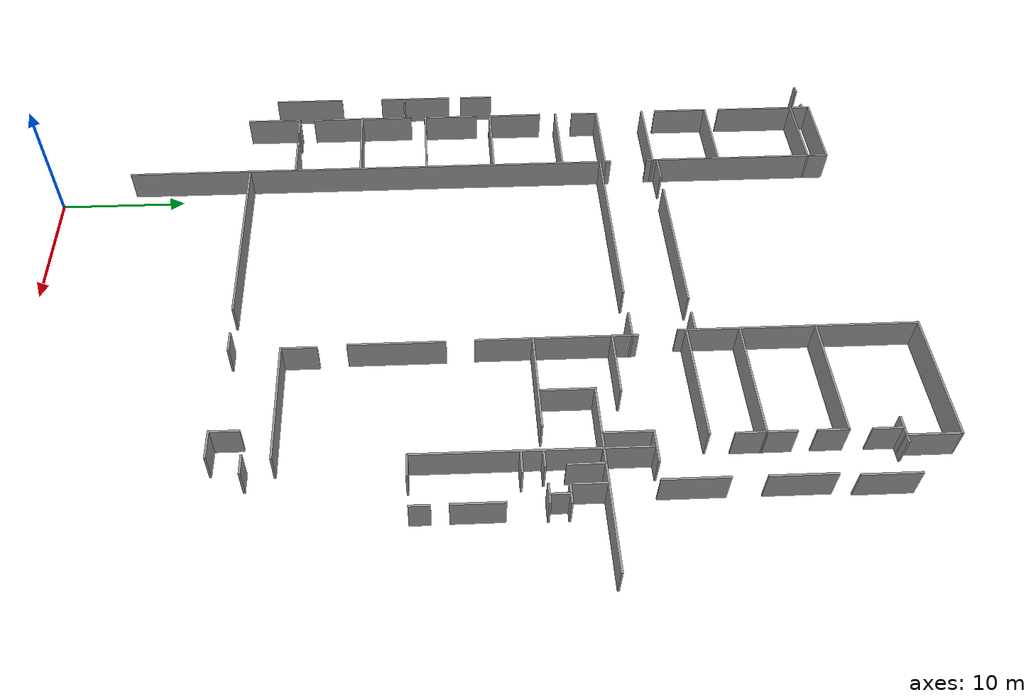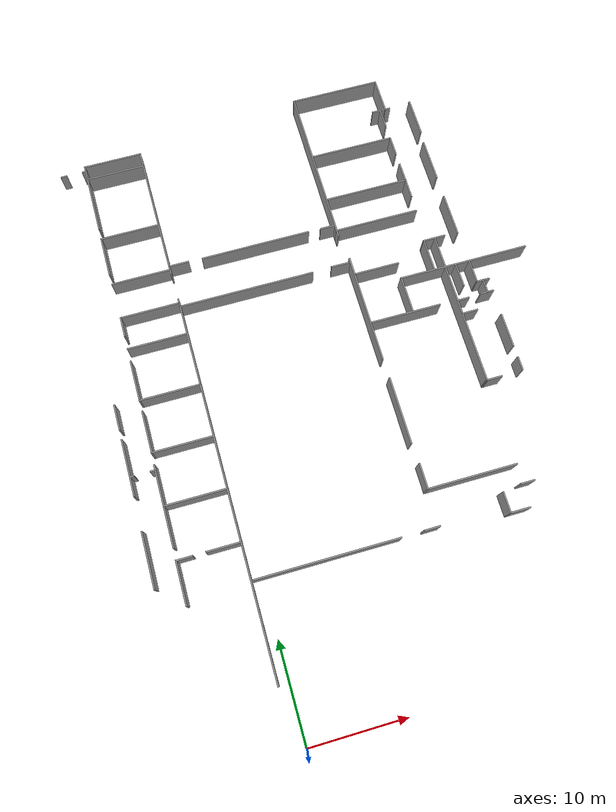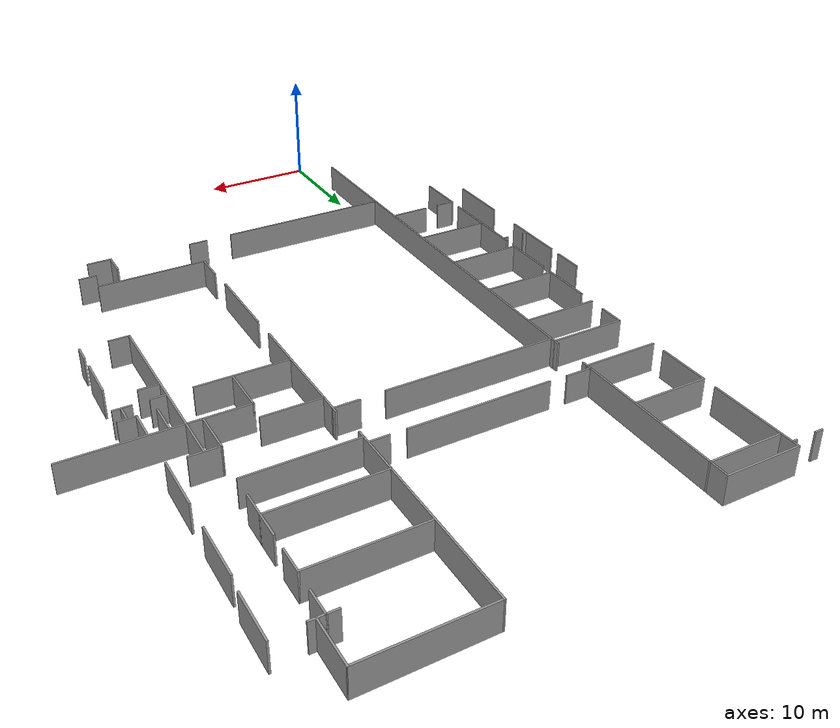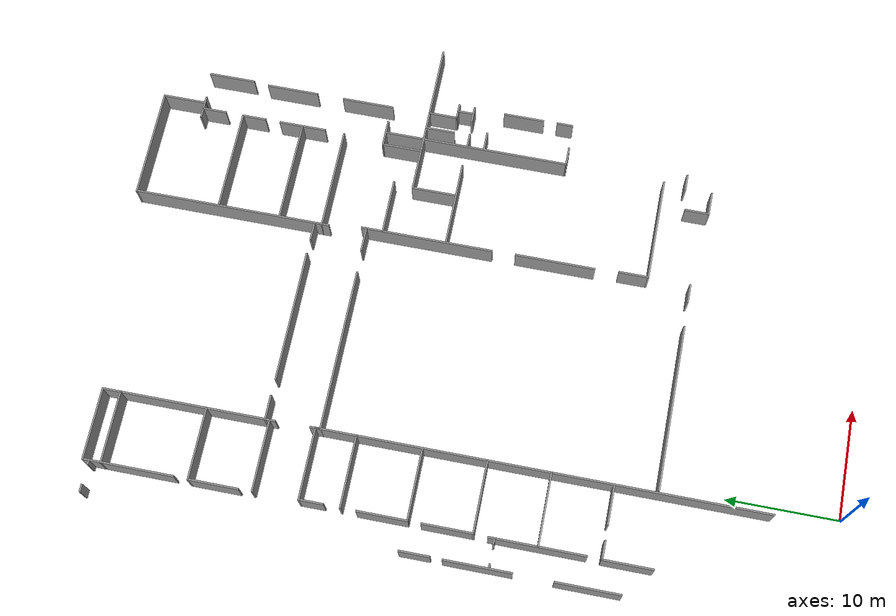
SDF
<sdf version="1.6">
 <model name="ensta_portes">
  <pose>1.28297 8.11006 0 0 -0 0</pose>
  <link name="Wall_1136">
   <collision name="Wall_1136_Collision">
    <geometry><box><size>15 0.15 2.5</size></box></geometry>
    <pose>0 0 1.25 0 -0 0</pose>
   </collision>
   <visual name="Wall_1136_Visual">
    <pose>0 0 1.25 0 -0 0</pose>
    <geometry><box><size>15 0.15 2.5</size></box></geometry>
    <material>
     <script><uri>file://media/materials/scripts/gazebo.material</uri><name>Gazebo/Grey</name></script>
     <ambient>1 1 1 1</ambient>
    </material>
    <meta><layer>0</layer></meta>
   </visual>
   <pose>5.31252 7.72951 0 0 -0 0</pose>
  </link>
  <link name="Wall_1138">
   <collision name="Wall_1138_Collision">
    <geometry><box><size>1.68456 0.15 2.5</size></box></geometry>
    <pose>0 0 1.25 0 -0 0</pose>
   </collision>
   <visual name="Wall_1138_Visual">
    <pose>0 0 1.25 0 -0 0</pose>
    <geometry><box><size>1.68456 0.15 2.5</size></box></geometry>
    <material>
     <script><uri>file://media/materials/scripts/gazebo.material</uri><name>Gazebo/Grey</name></script>
     <ambient>1 1 1 1</ambient>
    </material>
    <meta><layer>0</layer></meta>
   </visual>
   <pose>15.9348 7.77225 0 0 -0 0.003579</pose>
  </link>
  <link name="Wall_1144">
   <collision name="Wall_1144_Collision">
    <geometry><box><size>0.75 0.15 2.5</size></box></geometry>
    <pose>0 0 1.25 0 -0 0</pose>
   </collision>
   <visual name="Wall_1144_Visual">
    <pose>0 0 1.25 0 -0 0</pose>
    <geometry><box><size>0.75 0.15 2.5</size></box></geometry>
    <material>
     <script><uri>file://media/materials/scripts/gazebo.material</uri><name>Gazebo/Grey</name></script>
     <ambient>1 1 1 1</ambient>
    </material>
    <meta><layer>0</layer></meta>
   </visual>
   <pose>16.1952 40.9039 0 0 -0 -1.5708</pose>
  </link>
  <link name="Wall_171">
   <collision name="Wall_171_Collision">
    <geometry><box><size>1.5 0.15 2.5</size></box></geometry>
    <pose>0 0 1.25 0 -0 0</pose>
   </collision>
   <visual name="Wall_171_Visual">
    <pose>0 0 1.25 0 -0 0</pose>
    <geometry><box><size>1.5 0.15 2.5</size></box></geometry>
    <material>
     <script><uri>file://media/materials/scripts/gazebo.material</uri><name>Gazebo/Grey</name></script>
     <ambient>1 1 1 1</ambient>
    </material>
    <meta><layer>0</layer></meta>
   </visual>
   <pose>26.508 9.55259 0 0 -0 3.14159</pose>
  </link>
  <link name="Wall_189">
   <collision name="Wall_189_Collision">
    <geometry><box><size>9.5 0.15 2.5</size></box></geometry>
    <pose>0 0 1.25 0 -0 0</pose>
   </collision>
   <visual name="Wall_189_Visual">
    <pose>0 0 1.25 0 -0 0</pose>
    <geometry><box><size>9.5 0.15 2.5</size></box></geometry>
    <material>
     <script><uri>file://media/materials/scripts/gazebo.material</uri><name>Gazebo/Grey</name></script>
     <ambient>1 1 1 1</ambient>
    </material>
    <meta><layer>0</layer></meta>
   </visual>
   <pose>21.408 11.5526 0 0 -0 0</pose>
  </link>
  <link name="Wall_192">
   <collision name="Wall_192_Collision">
    <geometry><box><size>2.25 0.15 2.5</size></box></geometry>
    <pose>0 0 1.25 0 -0 0</pose>
   </collision>
   <visual name="Wall_192_Visual">
    <pose>0 0 1.25 0 -0 0</pose>
    <geometry><box><size>2.25 0.15 2.5</size></box></geometry>
    <material>
     <script><uri>file://media/materials/scripts/gazebo.material</uri><name>Gazebo/Grey</name></script>
     <ambient>1 1 1 1</ambient>
    </material>
    <meta><layer>0</layer></meta>
   </visual>
   <pose>23.8002 8.18236 0 0 -0 -1.5708</pose>
  </link>
  <link name="Wall_193">
   <collision name="Wall_193_Collision">
    <geometry><box><size>2.17473 0.15 2.5</size></box></geometry>
    <pose>0 0 1.25 0 -0 0</pose>
   </collision>
   <visual name="Wall_193_Visual">
    <pose>0 0 1.25 0 -0 0</pose>
    <geometry><box><size>2.17473 0.15 2.5</size></box></geometry>
    <material>
     <script><uri>file://media/materials/scripts/gazebo.material</uri><name>Gazebo/Grey</name></script>
     <ambient>1 1 1 1</ambient>
    </material>
    <meta><layer>0</layer></meta>
   </visual>
   <pose>24.8126 7.13086 0 0 -0 -0.001481</pose>
  </link>
  <link name="Wall_208">
   <collision name="Wall_208_Collision">
    <geometry><box><size>2.75 0.15 2.5</size></box></geometry>
    <pose>0 0 1.25 0 -0 0</pose>
   </collision>
   <visual name="Wall_208_Visual">
    <pose>0 0 1.25 0 -0 0</pose>
    <geometry><box><size>2.75 0.15 2.5</size></box></geometry>
    <material>
     <script><uri>file://media/materials/scripts/gazebo.material</uri><name>Gazebo/Grey</name></script>
     <ambient>1 1 1 1</ambient>
    </material>
    <meta><layer>0</layer></meta>
   </visual>
   <pose>16.733 12.8526 0 0 -0 1.5708</pose>
  </link>
  <link name="Wall_210">
   <collision name="Wall_210_Collision">
    <geometry><box><size>7.25 0.15 2.5</size></box></geometry>
    <pose>0 0 1.25 0 -0 0</pose>
   </collision>
   <visual name="Wall_210_Visual">
    <pose>0 0 1.25 0 -0 0</pose>
    <geometry><box><size>7.25 0.15 2.5</size></box></geometry>
    <material>
     <script><uri>file://media/materials/scripts/gazebo.material</uri><name>Gazebo/Grey</name></script>
     <ambient>1 1 1 1</ambient>
    </material>
    <meta><layer>0</layer></meta>
   </visual>
   <pose>16.5965 19.9449 0 0 -0 1.5708</pose>
  </link>
  <link name="Wall_212">
   <collision name="Wall_212_Collision">
    <geometry><box><size>12 0.15 2.5</size></box></geometry>
    <pose>0 0 1.25 0 -0 0</pose>
   </collision>
   <visual name="Wall_212_Visual">
    <pose>0 0 1.25 0 -0 0</pose>
    <geometry><box><size>12 0.15 2.5</size></box></geometry>
    <material>
     <script><uri>file://media/materials/scripts/gazebo.material</uri><name>Gazebo/Grey</name></script>
     <ambient>1 1 1 1</ambient>
    </material>
    <meta><layer>0</layer></meta>
   </visual>
   <pose>16.5473 31.6403 0 0 -0 1.5708</pose>
  </link>
  <link name="Wall_214">
   <collision name="Wall_214_Collision">
    <geometry><box><size>7.75 0.15 2.5</size></box></geometry>
    <pose>0 0 1.25 0 -0 0</pose>
   </collision>
   <visual name="Wall_214_Visual">
    <pose>0 0 1.25 0 -0 0</pose>
    <geometry><box><size>7.75 0.15 2.5</size></box></geometry>
    <material>
     <script><uri>file://media/materials/scripts/gazebo.material</uri><name>Gazebo/Grey</name></script>
     <ambient>1 1 1 1</ambient>
    </material>
    <meta><layer>0</layer></meta>
   </visual>
   <pose>20.4047 29.8873 0 0 -0 0</pose>
  </link>
  <link name="Wall_216">
   <collision name="Wall_216_Collision">
    <geometry><box><size>4 0.15 2.5</size></box></geometry>
    <pose>0 0 1.25 0 -0 0</pose>
   </collision>
   <visual name="Wall_216_Visual">
    <pose>0 0 1.25 0 -0 0</pose>
    <geometry><box><size>4 0.15 2.5</size></box></geometry>
    <material>
     <script><uri>file://media/materials/scripts/gazebo.material</uri><name>Gazebo/Grey</name></script>
     <ambient>1 1 1 1</ambient>
    </material>
    <meta><layer>0</layer></meta>
   </visual>
   <pose>21.2308 31.9732 0 0 -0 1.5708</pose>
  </link>
  <link name="Wall_217">
   <collision name="Wall_217_Collision">
    <geometry><box><size>14.25 0.15 2.5</size></box></geometry>
    <pose>0 0 1.25 0 -0 0</pose>
   </collision>
   <visual name="Wall_217_Visual">
    <pose>0 0 1.25 0 -0 0</pose>
    <geometry><box><size>14.25 0.15 2.5</size></box></geometry>
    <material>
     <script><uri>file://media/materials/scripts/gazebo.material</uri><name>Gazebo/Grey</name></script>
     <ambient>1 1 1 1</ambient>
    </material>
    <meta><layer>0</layer></meta>
   </visual>
   <pose>28.2808 33.8982 0 0 -0 0</pose>
  </link>
  <link name="Wall_219">
   <collision name="Wall_219_Collision">
    <geometry><box><size>5 0.15 2.5</size></box></geometry>
    <pose>0 0 1.25 0 -0 0</pose>
   </collision>
   <visual name="Wall_219_Visual">
    <pose>0 0 1.25 0 -0 0</pose>
    <geometry><box><size>5 0.15 2.5</size></box></geometry>
    <material>
     <script><uri>file://media/materials/scripts/gazebo.material</uri><name>Gazebo/Grey</name></script>
     <ambient>1 1 1 1</ambient>
    </material>
    <meta><layer>0</layer></meta>
   </visual>
   <pose>19.0211 35.68 0 0 -0 0</pose>
  </link>
  <link name="Wall_221">
   <collision name="Wall_221_Collision">
    <geometry><box><size>13.391 0.15 2.5</size></box></geometry>
    <pose>0 0 1.25 0 -0 0</pose>
   </collision>
   <visual name="Wall_221_Visual">
    <pose>0 0 1.25 0 -0 0</pose>
    <geometry><box><size>13.391 0.15 2.5</size></box></geometry>
    <material>
     <script><uri>file://media/materials/scripts/gazebo.material</uri><name>Gazebo/Grey</name></script>
     <ambient>1 1 1 1</ambient>
    </material>
    <meta><layer>0</layer></meta>
   </visual>
   <pose>26.1979 27.24 0 0 -0 -1.57175</pose>
  </link>
  <link name="Wall_222">
   <collision name="Wall_222_Collision">
    <geometry><box><size>1.75 0.15 2.5</size></box></geometry>
    <pose>0 0 1.25 0 -0 0</pose>
   </collision>
   <visual name="Wall_222_Visual">
    <pose>0 0 1.25 0 -0 0</pose>
    <geometry><box><size>1.75 0.15 2.5</size></box></geometry>
    <material>
     <script><uri>file://media/materials/scripts/gazebo.material</uri><name>Gazebo/Grey</name></script>
     <ambient>1 1 1 1</ambient>
    </material>
    <meta><layer>0</layer></meta>
   </visual>
   <pose>26.9916 20.6195 0 0 -0 0</pose>
  </link>
  <link name="Wall_232">
   <collision name="Wall_232_Collision">
    <geometry><box><size>1.75 0.15 2.5</size></box></geometry>
    <pose>0 0 1.25 0 -0 0</pose>
   </collision>
   <visual name="Wall_232_Visual">
    <pose>0 0 1.25 0 -0 0</pose>
    <geometry><box><size>1.75 0.15 2.5</size></box></geometry>
    <material>
     <script><uri>file://media/materials/scripts/gazebo.material</uri><name>Gazebo/Grey</name></script>
     <ambient>1 1 1 1</ambient>
    </material>
    <meta><layer>0</layer></meta>
   </visual>
   <pose>27.0409 28.2724 0 0 -0 0</pose>
  </link>
  <link name="Wall_238">
   <collision name="Wall_238_Collision">
    <geometry><box><size>3.75 0.15 2.5</size></box></geometry>
    <pose>0 0 1.25 0 -0 0</pose>
   </collision>
   <visual name="Wall_238_Visual">
    <pose>0 0 1.25 0 -0 0</pose>
    <geometry><box><size>3.75 0.15 2.5</size></box></geometry>
    <material>
     <script><uri>file://media/materials/scripts/gazebo.material</uri><name>Gazebo/Grey</name></script>
     <ambient>1 1 1 1</ambient>
    </material>
    <meta><layer>0</layer></meta>
   </visual>
   <pose>30.1049 25.2304 0 0 -0 -1.5708</pose>
  </link>
  <link name="Wall_240">
   <collision name="Wall_240_Collision">
    <geometry><box><size>1.5 0.15 2.5</size></box></geometry>
    <pose>0 0 1.25 0 -0 0</pose>
   </collision>
   <visual name="Wall_240_Visual">
    <pose>0 0 1.25 0 -0 0</pose>
    <geometry><box><size>1.5 0.15 2.5</size></box></geometry>
    <material>
     <script><uri>file://media/materials/scripts/gazebo.material</uri><name>Gazebo/Grey</name></script>
     <ambient>1 1 1 1</ambient>
    </material>
    <meta><layer>0</layer></meta>
   </visual>
   <pose>30.1187 21.4076 0 0 -0 -1.5708</pose>
  </link>
  <link name="Wall_244">
   <collision name="Wall_244_Collision">
    <geometry><box><size>1.25 0.15 2.5</size></box></geometry>
    <pose>0 0 1.25 0 -0 0</pose>
   </collision>
   <visual name="Wall_244_Visual">
    <pose>0 0 1.25 0 -0 0</pose>
    <geometry><box><size>1.25 0.15 2.5</size></box></geometry>
    <material>
     <script><uri>file://media/materials/scripts/gazebo.material</uri><name>Gazebo/Grey</name></script>
     <ambient>1 1 1 1</ambient>
    </material>
    <meta><layer>0</layer></meta>
   </visual>
   <pose>26.8806 29.8259 0 0 -0 0</pose>
  </link>
  <link name="Wall_246">
   <collision name="Wall_246_Collision">
    <geometry><box><size>2.70349 0.15 2.5</size></box></geometry>
    <pose>0 0 1.25 0 -0 0</pose>
   </collision>
   <visual name="Wall_246_Visual">
    <pose>0 0 1.25 0 -0 0</pose>
    <geometry><box><size>2.70349 0.15 2.5</size></box></geometry>
    <material>
     <script><uri>file://media/materials/scripts/gazebo.material</uri><name>Gazebo/Grey</name></script>
     <ambient>1 1 1 1</ambient>
    </material>
    <meta><layer>0</layer></meta>
   </visual>
   <pose>27.3831 32.5936 0 0 -0 -1.56644</pose>
  </link>
  <link name="Wall_248">
   <collision name="Wall_248_Collision">
    <geometry><box><size>2.68046 0.15 2.5</size></box></geometry>
    <pose>0 0 1.25 0 -0 0</pose>
   </collision>
   <visual name="Wall_248_Visual">
    <pose>0 0 1.25 0 -0 0</pose>
    <geometry><box><size>2.68046 0.15 2.5</size></box></geometry>
    <material>
     <script><uri>file://media/materials/scripts/gazebo.material</uri><name>Gazebo/Grey</name></script>
     <ambient>1 1 1 1</ambient>
    </material>
    <meta><layer>0</layer></meta>
   </visual>
   <pose>28.9077 32.6052 0 0 -0 -1.57165</pose>
  </link>
  <link name="Wall_249">
   <collision name="Wall_249_Collision">
    <geometry><box><size>1.5 0.15 2.5</size></box></geometry>
    <pose>0 0 1.25 0 -0 0</pose>
   </collision>
   <visual name="Wall_249_Visual">
    <pose>0 0 1.25 0 -0 0</pose>
    <geometry><box><size>1.5 0.15 2.5</size></box></geometry>
    <material>
     <script><uri>file://media/materials/scripts/gazebo.material</uri><name>Gazebo/Grey</name></script>
     <ambient>1 1 1 1</ambient>
    </material>
    <meta><layer>0</layer></meta>
   </visual>
   <pose>29.5816 31.3399 0 0 -0 0</pose>
  </link>
  <link name="Wall_254">
   <collision name="Wall_254_Collision">
    <geometry><box><size>1.5 0.15 2.5</size></box></geometry>
    <pose>0 0 1.25 0 -0 0</pose>
   </collision>
   <visual name="Wall_254_Visual">
    <pose>0 0 1.25 0 -0 0</pose>
    <geometry><box><size>1.5 0.15 2.5</size></box></geometry>
    <material>
     <script><uri>file://media/materials/scripts/gazebo.material</uri><name>Gazebo/Grey</name></script>
     <ambient>1 1 1 1</ambient>
    </material>
    <meta><layer>0</layer></meta>
   </visual>
   <pose>29.5333 29.9094 0 0 -0 0</pose>
  </link>
  <link name="Wall_256">
   <collision name="Wall_256_Collision">
    <geometry><box><size>1.5 0.15 2.5</size></box></geometry>
    <pose>0 0 1.25 0 -0 0</pose>
   </collision>
   <visual name="Wall_256_Visual">
    <pose>0 0 1.25 0 -0 0</pose>
    <geometry><box><size>1.5 0.15 2.5</size></box></geometry>
    <material>
     <script><uri>file://media/materials/scripts/gazebo.material</uri><name>Gazebo/Grey</name></script>
     <ambient>1 1 1 1</ambient>
    </material>
    <meta><layer>0</layer></meta>
   </visual>
   <pose>29.5993 30.5955 0 0 -0 -1.5708</pose>
  </link>
  <link name="Wall_266">
   <collision name="Wall_266_Collision">
    <geometry><box><size>4.25 0.15 2.5</size></box></geometry>
    <pose>0 0 1.25 0 -0 0</pose>
   </collision>
   <visual name="Wall_266_Visual">
    <pose>0 0 1.25 0 -0 0</pose>
    <geometry><box><size>4.25 0.15 2.5</size></box></geometry>
    <material>
     <script><uri>file://media/materials/scripts/gazebo.material</uri><name>Gazebo/Grey</name></script>
     <ambient>1 1 1 1</ambient>
    </material>
    <meta><layer>0</layer></meta>
   </visual>
   <pose>28.9808 52.6982 0 0 -0 -1.5708</pose>
  </link>
  <link name="Wall_270">
   <collision name="Wall_270_Collision">
    <geometry><box><size>4.75 0.15 2.5</size></box></geometry>
    <pose>0 0 1.25 0 -0 0</pose>
   </collision>
   <visual name="Wall_270_Visual">
    <pose>0 0 1.25 0 -0 0</pose>
    <geometry><box><size>4.75 0.15 2.5</size></box></geometry>
    <material>
     <script><uri>file://media/materials/scripts/gazebo.material</uri><name>Gazebo/Grey</name></script>
     <ambient>1 1 1 1</ambient>
    </material>
    <meta><layer>0</layer></meta>
   </visual>
   <pose>28.8317 46.8599 0 0 -0 -1.5708</pose>
  </link>
  <link name="Wall_274">
   <collision name="Wall_274_Collision">
    <geometry><box><size>4.75 0.15 2.5</size></box></geometry>
    <pose>0 0 1.25 0 -0 0</pose>
   </collision>
   <visual name="Wall_274_Visual">
    <pose>0 0 1.25 0 -0 0</pose>
    <geometry><box><size>4.75 0.15 2.5</size></box></geometry>
    <material>
     <script><uri>file://media/materials/scripts/gazebo.material</uri><name>Gazebo/Grey</name></script>
     <ambient>1 1 1 1</ambient>
    </material>
    <meta><layer>0</layer></meta>
   </visual>
   <pose>28.8144 39.7 0 0 -0 -1.5708</pose>
  </link>
  <link name="Wall_277">
   <collision name="Wall_277_Collision">
    <geometry><box><size>2.5 0.15 2.5</size></box></geometry>
    <pose>0 0 1.25 0 -0 0</pose>
   </collision>
   <visual name="Wall_277_Visual">
    <pose>0 0 1.25 0 -0 0</pose>
    <geometry><box><size>2.5 0.15 2.5</size></box></geometry>
    <material>
     <script><uri>file://media/materials/scripts/gazebo.material</uri><name>Gazebo/Grey</name></script>
     <ambient>1 1 1 1</ambient>
    </material>
    <meta><layer>0</layer></meta>
   </visual>
   <pose>26.1427 37.4716 0 0 -0 3.14159</pose>
  </link>
  <link name="Wall_278">
   <collision name="Wall_278_Collision">
    <geometry><box><size>3.71066 0.15 2.5</size></box></geometry>
    <pose>0 0 1.25 0 -0 0</pose>
   </collision>
   <visual name="Wall_278_Visual">
    <pose>0 0 1.25 0 -0 0</pose>
    <geometry><box><size>3.71066 0.15 2.5</size></box></geometry>
    <material>
     <script><uri>file://media/materials/scripts/gazebo.material</uri><name>Gazebo/Grey</name></script>
     <ambient>1 1 1 1</ambient>
    </material>
    <meta><layer>0</layer></meta>
   </visual>
   <pose>24.9707 35.6913 0 0 -0 -1.5691</pose>
  </link>
  <link name="Wall_280">
   <collision name="Wall_280_Collision">
    <geometry><box><size>3.75 0.15 2.5</size></box></geometry>
    <pose>0 0 1.25 0 -0 0</pose>
   </collision>
   <visual name="Wall_280_Visual">
    <pose>0 0 1.25 0 -0 0</pose>
    <geometry><box><size>3.75 0.15 2.5</size></box></geometry>
    <material>
     <script><uri>file://media/materials/scripts/gazebo.material</uri><name>Gazebo/Grey</name></script>
     <ambient>1 1 1 1</ambient>
    </material>
    <meta><layer>0</layer></meta>
   </visual>
   <pose>26.2042 35.6604 0 0 -0 -1.5708</pose>
  </link>
  <link name="Wall_282">
   <collision name="Wall_282_Collision">
    <geometry><box><size>1.25 0.15 2.5</size></box></geometry>
    <pose>0 0 1.25 0 -0 0</pose>
   </collision>
   <visual name="Wall_282_Visual">
    <pose>0 0 1.25 0 -0 0</pose>
    <geometry><box><size>1.25 0.15 2.5</size></box></geometry>
    <material>
     <script><uri>file://media/materials/scripts/gazebo.material</uri><name>Gazebo/Grey</name></script>
     <ambient>1 1 1 1</ambient>
    </material>
    <meta><layer>0</layer></meta>
   </visual>
   <pose>25.9401 54.5739 0 0 -0 3.14159</pose>
  </link>
  <link name="Wall_284">
   <collision name="Wall_284_Collision">
    <geometry><box><size>4 0.15 2.5</size></box></geometry>
    <pose>0 0 1.25 0 -0 0</pose>
   </collision>
   <visual name="Wall_284_Visual">
    <pose>0 0 1.25 0 -0 0</pose>
    <geometry><box><size>4 0.15 2.5</size></box></geometry>
    <material>
     <script><uri>file://media/materials/scripts/gazebo.material</uri><name>Gazebo/Grey</name></script>
     <ambient>1 1 1 1</ambient>
    </material>
    <meta><layer>0</layer></meta>
   </visual>
   <pose>25.9875 56.4989 0 0 -0 1.5708</pose>
  </link>
  <link name="Wall_285">
   <collision name="Wall_285_Collision">
    <geometry><box><size>9.9458 0.15 2.5</size></box></geometry>
    <pose>0 0 1.25 0 -0 0</pose>
   </collision>
   <visual name="Wall_285_Visual">
    <pose>0 0 1.25 0 -0 0</pose>
    <geometry><box><size>9.9458 0.15 2.5</size></box></geometry>
    <material>
     <script><uri>file://media/materials/scripts/gazebo.material</uri><name>Gazebo/Grey</name></script>
     <ambient>1 1 1 1</ambient>
    </material>
    <meta><layer>0</layer></meta>
   </visual>
   <pose>21.0896 58.4249 0 0 -0 3.14139</pose>
  </link>
  <link name="Wall_287">
   <collision name="Wall_287_Collision">
    <geometry><box><size>17.372 0.15 2.5</size></box></geometry>
    <pose>0 0 1.25 0 -0 0</pose>
   </collision>
   <visual name="Wall_287_Visual">
    <pose>0 0 1.25 0 -0 0</pose>
    <geometry><box><size>17.372 0.15 2.5</size></box></geometry>
    <material>
     <script><uri>file://media/materials/scripts/gazebo.material</uri><name>Gazebo/Grey</name></script>
     <ambient>1 1 1 1</ambient>
    </material>
    <meta><layer>0</layer></meta>
   </visual>
   <pose>16.1935 49.8149 0 0 -0 -1.57059</pose>
  </link>
  <link name="Wall_288">
   <collision name="Wall_288_Collision">
    <geometry><box><size>9.25 0.15 2.5</size></box></geometry>
    <pose>0 0 1.25 0 -0 0</pose>
   </collision>
   <visual name="Wall_288_Visual">
    <pose>0 0 1.25 0 -0 0</pose>
    <geometry><box><size>9.25 0.15 2.5</size></box></geometry>
    <material>
     <script><uri>file://media/materials/scripts/gazebo.material</uri><name>Gazebo/Grey</name></script>
     <ambient>1 1 1 1</ambient>
    </material>
    <meta><layer>0</layer></meta>
   </visual>
   <pose>20.7452 41.2039 0 0 -0 0</pose>
  </link>
  <link name="Wall_290">
   <collision name="Wall_290_Collision">
    <geometry><box><size>9.25 0.15 2.5</size></box></geometry>
    <pose>0 0 1.25 0 -0 0</pose>
   </collision>
   <visual name="Wall_290_Visual">
    <pose>0 0 1.25 0 -0 0</pose>
    <geometry><box><size>9.25 0.15 2.5</size></box></geometry>
    <material>
     <script><uri>file://media/materials/scripts/gazebo.material</uri><name>Gazebo/Grey</name></script>
     <ambient>1 1 1 1</ambient>
    </material>
    <meta><layer>0</layer></meta>
   </visual>
   <pose>20.8144 45.1383 0 0 -0 0</pose>
  </link>
  <link name="Wall_292">
   <collision name="Wall_292_Collision">
    <geometry><box><size>2.25 0.15 2.5</size></box></geometry>
    <pose>0 0 1.25 0 -0 0</pose>
   </collision>
   <visual name="Wall_292_Visual">
    <pose>0 0 1.25 0 -0 0</pose>
    <geometry><box><size>2.25 0.15 2.5</size></box></geometry>
    <material>
     <script><uri>file://media/materials/scripts/gazebo.material</uri><name>Gazebo/Grey</name></script>
     <ambient>1 1 1 1</ambient>
    </material>
    <meta><layer>0</layer></meta>
   </visual>
   <pose>25.3644 44.0883 0 0 -0 -1.5708</pose>
  </link>
  <link name="Wall_294">
   <collision name="Wall_294_Collision">
    <geometry><box><size>9.25 0.15 2.5</size></box></geometry>
    <pose>0 0 1.25 0 -0 0</pose>
   </collision>
   <visual name="Wall_294_Visual">
    <pose>0 0 1.25 0 -0 0</pose>
    <geometry><box><size>9.25 0.15 2.5</size></box></geometry>
    <material>
     <script><uri>file://media/materials/scripts/gazebo.material</uri><name>Gazebo/Grey</name></script>
     <ambient>1 1 1 1</ambient>
    </material>
    <meta><layer>0</layer></meta>
   </visual>
   <pose>20.8163 50.7822 0 0 -0 0</pose>
  </link>
  <link name="Wall_295">
   <collision name="Wall_295_Collision">
    <geometry><box><size>2.25 0.15 2.5</size></box></geometry>
    <pose>0 0 1.25 0 -0 0</pose>
   </collision>
   <visual name="Wall_295_Visual">
    <pose>0 0 1.25 0 -0 0</pose>
    <geometry><box><size>2.25 0.15 2.5</size></box></geometry>
    <material>
     <script><uri>file://media/materials/scripts/gazebo.material</uri><name>Gazebo/Grey</name></script>
     <ambient>1 1 1 1</ambient>
    </material>
    <meta><layer>0</layer></meta>
   </visual>
   <pose>25.3663 49.7322 0 0 -0 -1.5708</pose>
  </link>
  <link name="Wall_297">
   <collision name="Wall_297_Collision">
    <geometry><box><size>2.22866 0.15 2.5</size></box></geometry>
    <pose>0 0 1.25 0 -0 0</pose>
   </collision>
   <visual name="Wall_297_Visual">
    <pose>0 0 1.25 0 -0 0</pose>
    <geometry><box><size>2.22866 0.15 2.5</size></box></geometry>
    <material>
     <script><uri>file://media/materials/scripts/gazebo.material</uri><name>Gazebo/Grey</name></script>
     <ambient>1 1 1 1</ambient>
    </material>
    <meta><layer>0</layer></meta>
   </visual>
   <pose>25.3632 46.1776 0 0 -0 -1.56961</pose>
  </link>
  <link name="Wall_299">
   <collision name="Wall_299_Collision">
    <geometry><box><size>1 0.15 2.5</size></box></geometry>
    <pose>0 0 1.25 0 -0 0</pose>
   </collision>
   <visual name="Wall_299_Visual">
    <pose>0 0 1.25 0 -0 0</pose>
    <geometry><box><size>1 0.15 2.5</size></box></geometry>
    <material>
     <script><uri>file://media/materials/scripts/gazebo.material</uri><name>Gazebo/Grey</name></script>
     <ambient>1 1 1 1</ambient>
    </material>
    <meta><layer>0</layer></meta>
   </visual>
   <pose>24.9651 54.5739 0 0 -0 3.14159</pose>
  </link>
  <link name="Wall_301">
   <collision name="Wall_301_Collision">
    <geometry><box><size>2.25 0.15 2.5</size></box></geometry>
    <pose>0 0 1.25 0 -0 0</pose>
   </collision>
   <visual name="Wall_301_Visual">
    <pose>0 0 1.25 0 -0 0</pose>
    <geometry><box><size>2.25 0.15 2.5</size></box></geometry>
    <material>
     <script><uri>file://media/materials/scripts/gazebo.material</uri><name>Gazebo/Grey</name></script>
     <ambient>1 1 1 1</ambient>
    </material>
    <meta><layer>0</layer></meta>
   </visual>
   <pose>25.3901 53.5239 0 0 -0 -1.5708</pose>
  </link>
  <link name="Wall_306">
   <collision name="Wall_306_Collision">
    <geometry><box><size>1.75 0.15 2.5</size></box></geometry>
    <pose>0 0 1.25 0 -0 0</pose>
   </collision>
   <visual name="Wall_306_Visual">
    <pose>0 0 1.25 0 -0 0</pose>
    <geometry><box><size>1.75 0.15 2.5</size></box></geometry>
    <material>
     <script><uri>file://media/materials/scripts/gazebo.material</uri><name>Gazebo/Grey</name></script>
     <ambient>1 1 1 1</ambient>
    </material>
    <meta><layer>0</layer></meta>
   </visual>
   <pose>15.381 41.8731 0 0 -0 3.14159</pose>
  </link>
  <link name="Wall_308">
   <collision name="Wall_308_Collision">
    <geometry><box><size>12 0.15 2.5</size></box></geometry>
    <pose>0 0 1.25 0 -0 0</pose>
   </collision>
   <visual name="Wall_308_Visual">
    <pose>0 0 1.25 0 -0 0</pose>
    <geometry><box><size>12 0.15 2.5</size></box></geometry>
    <material>
     <script><uri>file://media/materials/scripts/gazebo.material</uri><name>Gazebo/Grey</name></script>
     <ambient>1 1 1 1</ambient>
    </material>
    <meta><layer>0</layer></meta>
   </visual>
   <pose>7.20728 41.883 0 0 -0 3.14159</pose>
  </link>
  <link name="Wall_310">
   <collision name="Wall_310_Collision">
    <geometry><box><size>2.25 0.15 2.5</size></box></geometry>
    <pose>0 0 1.25 0 -0 0</pose>
   </collision>
   <visual name="Wall_310_Visual">
    <pose>0 0 1.25 0 -0 0</pose>
    <geometry><box><size>2.25 0.15 2.5</size></box></geometry>
    <material>
     <script><uri>file://media/materials/scripts/gazebo.material</uri><name>Gazebo/Grey</name></script>
     <ambient>1 1 1 1</ambient>
    </material>
    <meta><layer>0</layer></meta>
   </visual>
   <pose>-1.36536 41.9288 0 0 -0 3.14159</pose>
  </link>
  <link name="Wall_312">
   <collision name="Wall_312_Collision">
    <geometry><box><size>1 0.15 2.5</size></box></geometry>
    <pose>0 0 1.25 0 -0 0</pose>
   </collision>
   <visual name="Wall_312_Visual">
    <pose>0 0 1.25 0 -0 0</pose>
    <geometry><box><size>1 0.15 2.5</size></box></geometry>
    <material>
     <script><uri>file://media/materials/scripts/gazebo.material</uri><name>Gazebo/Grey</name></script>
     <ambient>1 1 1 1</ambient>
    </material>
    <meta><layer>0</layer></meta>
   </visual>
   <pose>-2.41535 41.5038 0 0 -0 -1.5708</pose>
  </link>
  <link name="Wall_316">
   <collision name="Wall_316_Collision">
    <geometry><box><size>1 0.15 2.5</size></box></geometry>
    <pose>0 0 1.25 0 -0 0</pose>
   </collision>
   <visual name="Wall_316_Visual">
    <pose>0 0 1.25 0 -0 0</pose>
    <geometry><box><size>1 0.15 2.5</size></box></geometry>
    <material>
     <script><uri>file://media/materials/scripts/gazebo.material</uri><name>Gazebo/Grey</name></script>
     <ambient>1 1 1 1</ambient>
    </material>
    <meta><layer>0</layer></meta>
   </visual>
   <pose>-2.35107 37.5063 0 0 -0 -1.5708</pose>
  </link>
  <link name="Wall_317">
   <collision name="Wall_317_Collision">
    <geometry><box><size>14.75 0.15 2.5</size></box></geometry>
    <pose>0 0 1.25 0 -0 0</pose>
   </collision>
   <visual name="Wall_317_Visual">
    <pose>0 0 1.25 0 -0 0</pose>
    <geometry><box><size>14.75 0.15 2.5</size></box></geometry>
    <material>
     <script><uri>file://media/materials/scripts/gazebo.material</uri><name>Gazebo/Grey</name></script>
     <ambient>1 1 1 1</ambient>
    </material>
    <meta><layer>0</layer></meta>
   </visual>
   <pose>4.94893 37.0813 0 0 -0 0</pose>
  </link>
  <link name="Wall_319">
   <collision name="Wall_319_Collision">
    <geometry><box><size>2.25 0.15 2.5</size></box></geometry>
    <pose>0 0 1.25 0 -0 0</pose>
   </collision>
   <visual name="Wall_319_Visual">
    <pose>0 0 1.25 0 -0 0</pose>
    <geometry><box><size>2.25 0.15 2.5</size></box></geometry>
    <material>
     <script><uri>file://media/materials/scripts/gazebo.material</uri><name>Gazebo/Grey</name></script>
     <ambient>1 1 1 1</ambient>
    </material>
    <meta><layer>0</layer></meta>
   </visual>
   <pose>15.4995 37.1681 0 0 -0 0</pose>
  </link>
  <link name="Wall_321">
   <collision name="Wall_321_Collision">
    <geometry><box><size>13 0.15 2.5</size></box></geometry>
    <pose>0 0 1.25 0 -0 0</pose>
   </collision>
   <visual name="Wall_321_Visual">
    <pose>0 0 1.25 0 -0 0</pose>
    <geometry><box><size>13 0.15 2.5</size></box></geometry>
    <material>
     <script><uri>file://media/materials/scripts/gazebo.material</uri><name>Gazebo/Grey</name></script>
     <ambient>1 1 1 1</ambient>
    </material>
    <meta><layer>0</layer></meta>
   </visual>
   <pose>-2.41535 48.3538 0 0 -0 1.5708</pose>
  </link>
  <link name="Wall_322">
   <collision name="Wall_322_Collision">
    <geometry><box><size>6.5 0.15 2.5</size></box></geometry>
    <pose>0 0 1.25 0 -0 0</pose>
   </collision>
   <visual name="Wall_322_Visual">
    <pose>0 0 1.25 0 -0 0</pose>
    <geometry><box><size>6.5 0.15 2.5</size></box></geometry>
    <material>
     <script><uri>file://media/materials/scripts/gazebo.material</uri><name>Gazebo/Grey</name></script>
     <ambient>1 1 1 1</ambient>
    </material>
    <meta><layer>0</layer></meta>
   </visual>
   <pose>-5.59035 54.7788 0 0 -0 3.14159</pose>
  </link>
  <link name="Wall_323">
   <collision name="Wall_323_Collision">
    <geometry><box><size>6.5 0.15 2.5</size></box></geometry>
    <pose>0 0 1.25 0 -0 0</pose>
   </collision>
   <visual name="Wall_323_Visual">
    <pose>0 0 1.25 0 -0 0</pose>
    <geometry><box><size>6.5 0.15 2.5</size></box></geometry>
    <material>
     <script><uri>file://media/materials/scripts/gazebo.material</uri><name>Gazebo/Grey</name></script>
     <ambient>1 1 1 1</ambient>
    </material>
    <meta><layer>0</layer></meta>
   </visual>
   <pose>-8.76535 51.6038 0 0 -0 -1.5708</pose>
  </link>
  <link name="Wall_325">
   <collision name="Wall_325_Collision">
    <geometry><box><size>6.5 0.15 2.5</size></box></geometry>
    <pose>0 0 1.25 0 -0 0</pose>
   </collision>
   <visual name="Wall_325_Visual">
    <pose>0 0 1.25 0 -0 0</pose>
    <geometry><box><size>6.5 0.15 2.5</size></box></geometry>
    <material>
     <script><uri>file://media/materials/scripts/gazebo.material</uri><name>Gazebo/Grey</name></script>
     <ambient>1 1 1 1</ambient>
    </material>
    <meta><layer>0</layer></meta>
   </visual>
   <pose>-5.6152 47.1217 0 0 -0 0</pose>
  </link>
  <link name="Wall_327">
   <collision name="Wall_327_Collision">
    <geometry><box><size>4.5 0.15 2.5</size></box></geometry>
    <pose>0 0 1.25 0 -0 0</pose>
   </collision>
   <visual name="Wall_327_Visual">
    <pose>0 0 1.25 0 -0 0</pose>
    <geometry><box><size>4.5 0.15 2.5</size></box></geometry>
    <material>
     <script><uri>file://media/materials/scripts/gazebo.material</uri><name>Gazebo/Grey</name></script>
     <ambient>1 1 1 1</ambient>
    </material>
    <meta><layer>0</layer></meta>
   </visual>
   <pose>-8.7902 44.9467 0 0 -0 -1.5708</pose>
  </link>
  <link name="Wall_329">
   <collision name="Wall_329_Collision">
    <geometry><box><size>6.47359 0.15 2.5</size></box></geometry>
    <pose>0 0 1.25 0 -0 0</pose>
   </collision>
   <visual name="Wall_329_Visual">
    <pose>0 0 1.25 0 -0 0</pose>
    <geometry><box><size>6.47359 0.15 2.5</size></box></geometry>
    <material>
     <script><uri>file://media/materials/scripts/gazebo.material</uri><name>Gazebo/Grey</name></script>
     <ambient>1 1 1 1</ambient>
    </material>
    <meta><layer>0</layer></meta>
   </visual>
   <pose>-5.57388 41.5321 0 0 -0 0.000456</pose>
  </link>
  <link name="Wall_331">
   <collision name="Wall_331_Collision">
    <geometry><box><size>1.75 0.15 2.5</size></box></geometry>
    <pose>0 0 1.25 0 -0 0</pose>
   </collision>
   <visual name="Wall_331_Visual">
    <pose>0 0 1.25 0 -0 0</pose>
    <geometry><box><size>1.75 0.15 2.5</size></box></geometry>
    <material>
     <script><uri>file://media/materials/scripts/gazebo.material</uri><name>Gazebo/Grey</name></script>
     <ambient>1 1 1 1</ambient>
    </material>
    <meta><layer>0</layer></meta>
   </visual>
   <pose>-8.76535 55.5788 0 0 -0 1.5708</pose>
  </link>
  <link name="Wall_332">
   <collision name="Wall_332_Collision">
    <geometry><box><size>6.5 0.15 2.5</size></box></geometry>
    <pose>0 0 1.25 0 -0 0</pose>
   </collision>
   <visual name="Wall_332_Visual">
    <pose>0 0 1.25 0 -0 0</pose>
    <geometry><box><size>6.5 0.15 2.5</size></box></geometry>
    <material>
     <script><uri>file://media/materials/scripts/gazebo.material</uri><name>Gazebo/Grey</name></script>
     <ambient>1 1 1 1</ambient>
    </material>
    <meta><layer>0</layer></meta>
   </visual>
   <pose>-5.59035 56.3788 0 0 -0 0</pose>
  </link>
  <link name="Wall_334">
   <collision name="Wall_334_Collision">
    <geometry><box><size>1.75 0.15 2.5</size></box></geometry>
    <pose>0 0 1.25 0 -0 0</pose>
   </collision>
   <visual name="Wall_334_Visual">
    <pose>0 0 1.25 0 -0 0</pose>
    <geometry><box><size>1.75 0.15 2.5</size></box></geometry>
    <material>
     <script><uri>file://media/materials/scripts/gazebo.material</uri><name>Gazebo/Grey</name></script>
     <ambient>1 1 1 1</ambient>
    </material>
    <meta><layer>0</layer></meta>
   </visual>
   <pose>-2.41535 55.5788 0 0 -0 -1.5708</pose>
  </link>
  <link name="Wall_336">
   <collision name="Wall_336_Collision">
    <geometry><box><size>0.704262 0.15 2.5</size></box></geometry>
    <pose>0 0 1.25 0 -0 0</pose>
   </collision>
   <visual name="Wall_336_Visual">
    <pose>0 0 1.25 0 -0 0</pose>
    <geometry><box><size>0.704262 0.15 2.5</size></box></geometry>
    <material>
     <script><uri>file://media/materials/scripts/gazebo.material</uri><name>Gazebo/Grey</name></script>
     <ambient>1 1 1 1</ambient>
    </material>
    <meta><layer>0</layer></meta>
   </visual>
   <pose>-11.2554 55.8208 0 0 -0 0.00334</pose>
  </link>
  <link name="Wall_338">
   <collision name="Wall_338_Collision">
    <geometry><box><size>0.5 0.15 2.5</size></box></geometry>
    <pose>0 0 1.25 0 -0 0</pose>
   </collision>
   <visual name="Wall_338_Visual">
    <pose>0 0 1.25 0 -0 0</pose>
    <geometry><box><size>0.5 0.15 2.5</size></box></geometry>
    <material>
     <script><uri>file://media/materials/scripts/gazebo.material</uri><name>Gazebo/Grey</name></script>
     <ambient>1 1 1 1</ambient>
    </material>
    <meta><layer>0</layer></meta>
   </visual>
   <pose>-8.95086 55.8208 0 0 -0 0</pose>
  </link>
  <link name="Wall_349">
   <collision name="Wall_349_Collision">
    <geometry><box><size>6.5 0.15 2.5</size></box></geometry>
    <pose>0 0 1.25 0 -0 0</pose>
   </collision>
   <visual name="Wall_349_Visual">
    <pose>0 0 1.25 0 -0 0</pose>
    <geometry><box><size>6.5 0.15 2.5</size></box></geometry>
    <material>
     <script><uri>file://media/materials/scripts/gazebo.material</uri><name>Gazebo/Grey</name></script>
     <ambient>1 1 1 1</ambient>
    </material>
    <meta><layer>0</layer></meta>
   </visual>
   <pose>-5.51521 37.4982 0 0 -0 3.14159</pose>
  </link>
  <link name="Wall_350">
   <collision name="Wall_350_Collision">
    <geometry><box><size>2.25 0.15 2.5</size></box></geometry>
    <pose>0 0 1.25 0 -0 0</pose>
   </collision>
   <visual name="Wall_350_Visual">
    <pose>0 0 1.25 0 -0 0</pose>
    <geometry><box><size>2.25 0.15 2.5</size></box></geometry>
    <material>
     <script><uri>file://media/materials/scripts/gazebo.material</uri><name>Gazebo/Grey</name></script>
     <ambient>1 1 1 1</ambient>
    </material>
    <meta><layer>0</layer></meta>
   </visual>
   <pose>-8.69021 36.4482 0 0 -0 -1.5708</pose>
  </link>
  <link name="Wall_353">
   <collision name="Wall_353_Collision">
    <geometry><box><size>39.75 0.15 2.5</size></box></geometry>
    <pose>0 0 1.25 0 -0 0</pose>
   </collision>
   <visual name="Wall_353_Visual">
    <pose>0 0 1.25 0 -0 0</pose>
    <geometry><box><size>39.75 0.15 2.5</size></box></geometry>
    <material>
     <script><uri>file://media/materials/scripts/gazebo.material</uri><name>Gazebo/Grey</name></script>
     <ambient>1 1 1 1</ambient>
    </material>
    <meta><layer>0</layer></meta>
   </visual>
   <pose>-2.34021 17.6982 0 0 -0 -1.5708</pose>
  </link>
  <link name="Wall_361">
   <collision name="Wall_361_Collision">
    <geometry><box><size>4.5 0.15 2.5</size></box></geometry>
    <pose>0 0 1.25 0 -0 0</pose>
   </collision>
   <visual name="Wall_361_Visual">
    <pose>0 0 1.25 0 -0 0</pose>
    <geometry><box><size>4.5 0.15 2.5</size></box></geometry>
    <material>
     <script><uri>file://media/materials/scripts/gazebo.material</uri><name>Gazebo/Grey</name></script>
     <ambient>1 1 1 1</ambient>
    </material>
    <meta><layer>0</layer></meta>
   </visual>
   <pose>-8.81635 9.31702 0 0 -0 1.5708</pose>
  </link>
  <link name="Wall_362">
   <collision name="Wall_362_Collision">
    <geometry><box><size>1.75 0.15 2.5</size></box></geometry>
    <pose>0 0 1.25 0 -0 0</pose>
   </collision>
   <visual name="Wall_362_Visual">
    <pose>0 0 1.25 0 -0 0</pose>
    <geometry><box><size>1.75 0.15 2.5</size></box></geometry>
    <material>
     <script><uri>file://media/materials/scripts/gazebo.material</uri><name>Gazebo/Grey</name></script>
     <ambient>1 1 1 1</ambient>
    </material>
    <meta><layer>0</layer></meta>
   </visual>
   <pose>-8.01635 11.492 0 0 -0 0</pose>
  </link>
  <link name="Wall_364">
   <collision name="Wall_364_Collision">
    <geometry><box><size>3.5 0.15 2.5</size></box></geometry>
    <pose>0 0 1.25 0 -0 0</pose>
   </collision>
   <visual name="Wall_364_Visual">
    <pose>0 0 1.25 0 -0 0</pose>
    <geometry><box><size>3.5 0.15 2.5</size></box></geometry>
    <material>
     <script><uri>file://media/materials/scripts/gazebo.material</uri><name>Gazebo/Grey</name></script>
     <ambient>1 1 1 1</ambient>
    </material>
    <meta><layer>0</layer></meta>
   </visual>
   <pose>-4.1077 11.5094 0 0 -0 0</pose>
  </link>
  <link name="Wall_366">
   <collision name="Wall_366_Collision">
    <geometry><box><size>8.5 0.15 2.5</size></box></geometry>
    <pose>0 0 1.25 0 -0 0</pose>
   </collision>
   <visual name="Wall_366_Visual">
    <pose>0 0 1.25 0 -0 0</pose>
    <geometry><box><size>8.5 0.15 2.5</size></box></geometry>
    <material>
     <script><uri>file://media/materials/scripts/gazebo.material</uri><name>Gazebo/Grey</name></script>
     <ambient>1 1 1 1</ambient>
    </material>
    <meta><layer>0</layer></meta>
   </visual>
   <pose>-8.7706 16.9782 0 0 -0 1.5708</pose>
  </link>
  <link name="Wall_368">
   <collision name="Wall_368_Collision">
    <geometry><box><size>6.5 0.15 2.5</size></box></geometry>
    <pose>0 0 1.25 0 -0 0</pose>
   </collision>
   <visual name="Wall_368_Visual">
    <pose>0 0 1.25 0 -0 0</pose>
    <geometry><box><size>6.5 0.15 2.5</size></box></geometry>
    <material>
     <script><uri>file://media/materials/scripts/gazebo.material</uri><name>Gazebo/Grey</name></script>
     <ambient>1 1 1 1</ambient>
    </material>
    <meta><layer>0</layer></meta>
   </visual>
   <pose>-5.55251 16.9249 0 0 -0 0</pose>
  </link>
  <link name="Wall_370">
   <collision name="Wall_370_Collision">
    <geometry><box><size>4.59524 0.15 2.5</size></box></geometry>
    <pose>0 0 1.25 0 -0 0</pose>
   </collision>
   <visual name="Wall_370_Visual">
    <pose>0 0 1.25 0 -0 0</pose>
    <geometry><box><size>4.59524 0.15 2.5</size></box></geometry>
    <material>
     <script><uri>file://media/materials/scripts/gazebo.material</uri><name>Gazebo/Grey</name></script>
     <ambient>1 1 1 1</ambient>
    </material>
    <meta><layer>0</layer></meta>
   </visual>
   <pose>-8.71642 24.6671 0 0 -0 -1.5708</pose>
  </link>
  <link name="Wall_371">
   <collision name="Wall_371_Collision">
    <geometry><box><size>6.5 0.15 2.5</size></box></geometry>
    <pose>0 0 1.25 0 -0 0</pose>
   </collision>
   <visual name="Wall_371_Visual">
    <pose>0 0 1.25 0 -0 0</pose>
    <geometry><box><size>6.5 0.15 2.5</size></box></geometry>
    <material>
     <script><uri>file://media/materials/scripts/gazebo.material</uri><name>Gazebo/Grey</name></script>
     <ambient>1 1 1 1</ambient>
    </material>
    <meta><layer>0</layer></meta>
   </visual>
   <pose>-5.55862 22.4617 0 0 -0 0</pose>
  </link>
  <link name="Wall_373">
   <collision name="Wall_373_Collision">
    <geometry><box><size>4.5 0.15 2.5</size></box></geometry>
    <pose>0 0 1.25 0 -0 0</pose>
   </collision>
   <visual name="Wall_373_Visual">
    <pose>0 0 1.25 0 -0 0</pose>
    <geometry><box><size>4.5 0.15 2.5</size></box></geometry>
    <material>
     <script><uri>file://media/materials/scripts/gazebo.material</uri><name>Gazebo/Grey</name></script>
     <ambient>1 1 1 1</ambient>
    </material>
    <meta><layer>0</layer></meta>
   </visual>
   <pose>-8.71566 30.2887 0 0 -0 -1.5708</pose>
  </link>
  <link name="Wall_374">
   <collision name="Wall_374_Collision">
    <geometry><box><size>6.5 0.15 2.5</size></box></geometry>
    <pose>0 0 1.25 0 -0 0</pose>
   </collision>
   <visual name="Wall_374_Visual">
    <pose>0 0 1.25 0 -0 0</pose>
    <geometry><box><size>6.5 0.15 2.5</size></box></geometry>
    <material>
     <script><uri>file://media/materials/scripts/gazebo.material</uri><name>Gazebo/Grey</name></script>
     <ambient>1 1 1 1</ambient>
    </material>
    <meta><layer>0</layer></meta>
   </visual>
   <pose>-5.54066 28.1137 0 0 -0 0</pose>
  </link>
  <link name="Wall_376">
   <collision name="Wall_376_Collision">
    <geometry><box><size>6.5 0.15 2.5</size></box></geometry>
    <pose>0 0 1.25 0 -0 0</pose>
   </collision>
   <visual name="Wall_376_Visual">
    <pose>0 0 1.25 0 -0 0</pose>
    <geometry><box><size>6.5 0.15 2.5</size></box></geometry>
    <material>
     <script><uri>file://media/materials/scripts/gazebo.material</uri><name>Gazebo/Grey</name></script>
     <ambient>1 1 1 1</ambient>
    </material>
    <meta><layer>0</layer></meta>
   </visual>
   <pose>-5.51617 33.9001 0 0 -0 0</pose>
  </link>
  <link name="Wall_424">
   <collision name="Wall_424_Collision">
    <geometry><box><size>5.75 0.15 2.5</size></box></geometry>
    <pose>0 0 1.25 0 -0 0</pose>
   </collision>
   <visual name="Wall_424_Visual">
    <pose>0 0 1.25 0 -0 0</pose>
    <geometry><box><size>5.75 0.15 2.5</size></box></geometry>
    <material>
     <script><uri>file://media/materials/scripts/gazebo.material</uri><name>Gazebo/Grey</name></script>
     <ambient>1 1 1 1</ambient>
    </material>
    <meta><layer>0</layer></meta>
   </visual>
   <pose>-11.3978 12.2397 0 0 -0 1.5708</pose>
  </link>
  <link name="Wall_434">
   <collision name="Wall_434_Collision">
    <geometry><box><size>6 0.15 2.5</size></box></geometry>
    <pose>0 0 1.25 0 -0 0</pose>
   </collision>
   <visual name="Wall_434_Visual">
    <pose>0 0 1.25 0 -0 0</pose>
    <geometry><box><size>6 0.15 2.5</size></box></geometry>
    <material>
     <script><uri>file://media/materials/scripts/gazebo.material</uri><name>Gazebo/Grey</name></script>
     <ambient>1 1 1 1</ambient>
    </material>
    <meta><layer>0</layer></meta>
   </visual>
   <pose>-11.3517 21.6 0 0 -0 -1.5708</pose>
  </link>
  <link name="Wall_440">
   <collision name="Wall_440_Collision">
    <geometry><box><size>0.5 0.15 2.5</size></box></geometry>
    <pose>0 0 1.25 0 -0 0</pose>
   </collision>
   <visual name="Wall_440_Visual">
    <pose>0 0 1.25 0 -0 0</pose>
    <geometry><box><size>0.5 0.15 2.5</size></box></geometry>
    <material>
     <script><uri>file://media/materials/scripts/gazebo.material</uri><name>Gazebo/Grey</name></script>
     <ambient>1 1 1 1</ambient>
    </material>
    <meta><layer>0</layer></meta>
   </visual>
   <pose>-11.1601 20.6342 0 0 -0 0</pose>
  </link>
  <link name="Wall_442">
   <collision name="Wall_442_Collision">
    <geometry><box><size>0.5 0.15 2.5</size></box></geometry>
    <pose>0 0 1.25 0 -0 0</pose>
   </collision>
   <visual name="Wall_442_Visual">
    <pose>0 0 1.25 0 -0 0</pose>
    <geometry><box><size>0.5 0.15 2.5</size></box></geometry>
    <material>
     <script><uri>file://media/materials/scripts/gazebo.material</uri><name>Gazebo/Grey</name></script>
     <ambient>1 1 1 1</ambient>
    </material>
    <meta><layer>0</layer></meta>
   </visual>
   <pose>-9.05212 20.6342 0 0 -0 0</pose>
  </link>
  <link name="Wall_445">
   <collision name="Wall_445_Collision">
    <geometry><box><size>2.75 0.15 2.5</size></box></geometry>
    <pose>0 0 1.25 0 -0 0</pose>
   </collision>
   <visual name="Wall_445_Visual">
    <pose>0 0 1.25 0 -0 0</pose>
    <geometry><box><size>2.75 0.15 2.5</size></box></geometry>
    <material>
     <script><uri>file://media/materials/scripts/gazebo.material</uri><name>Gazebo/Grey</name></script>
     <ambient>1 1 1 1</ambient>
    </material>
    <meta><layer>0</layer></meta>
   </visual>
   <pose>-11.3257 26.9885 0 0 -0 -1.5708</pose>
  </link>
  <static>1</static>
 </model>
</sdf>
